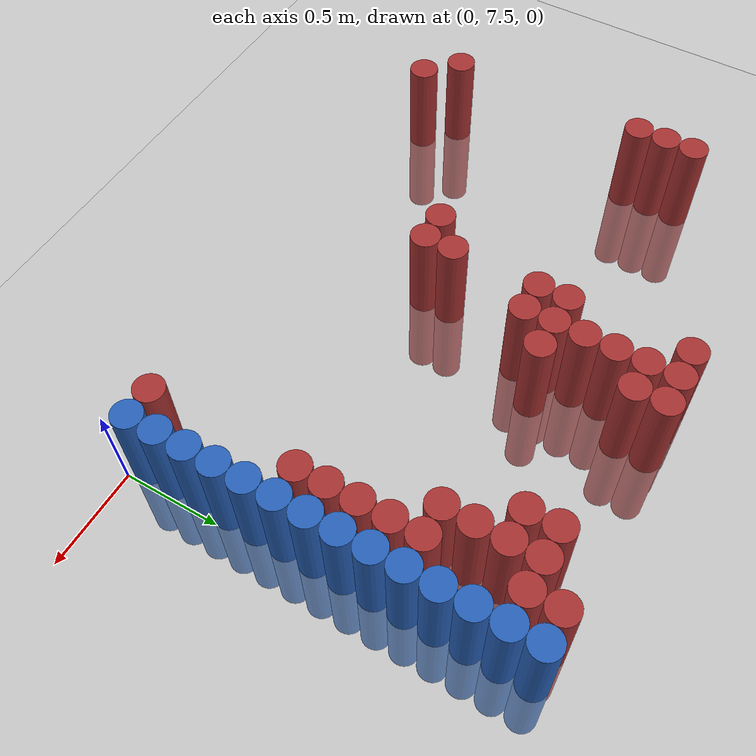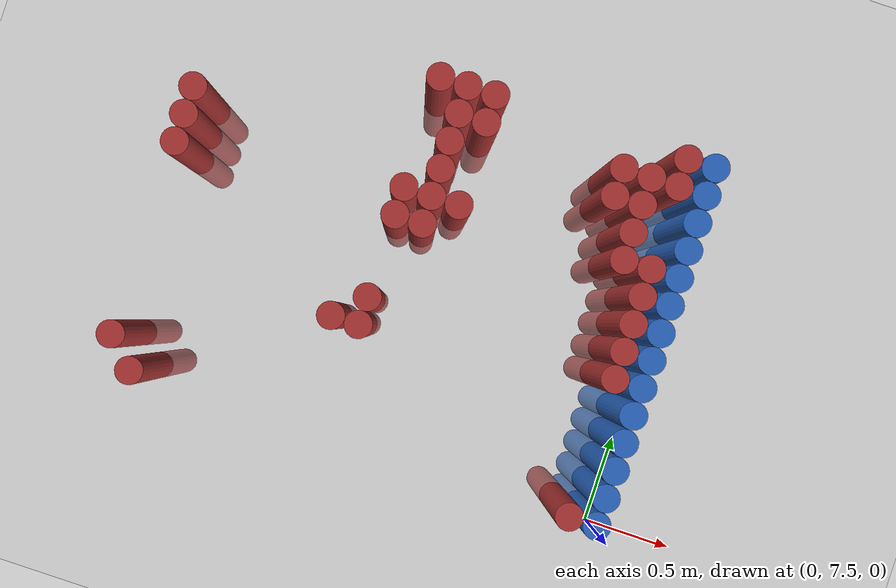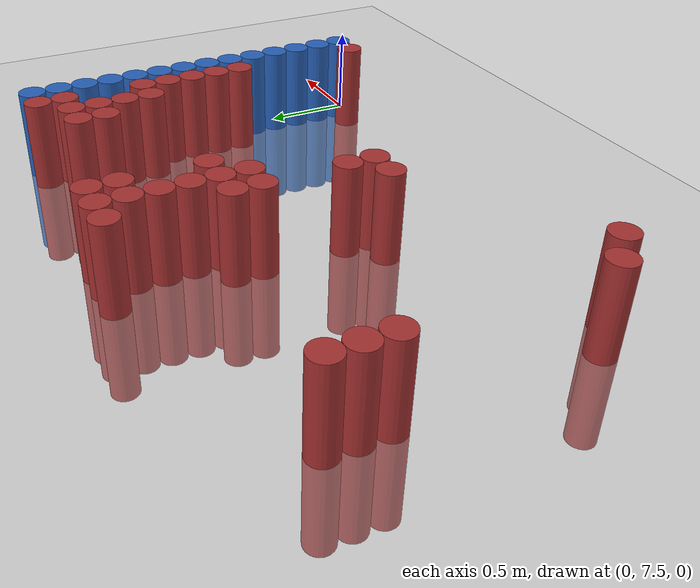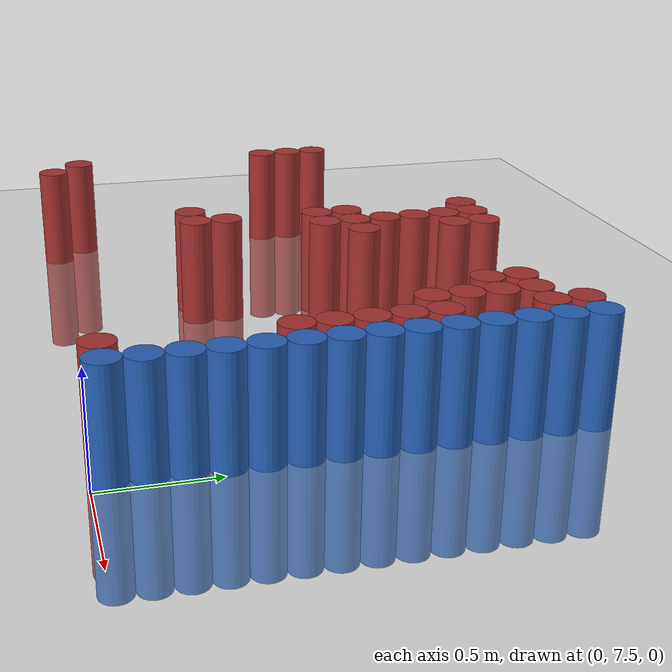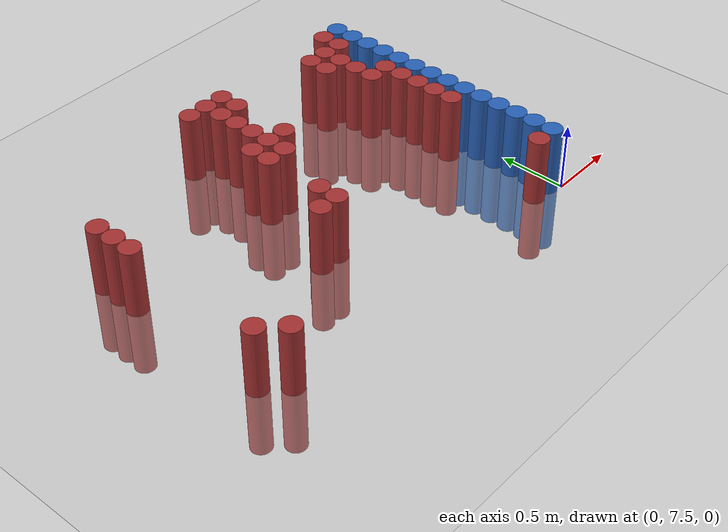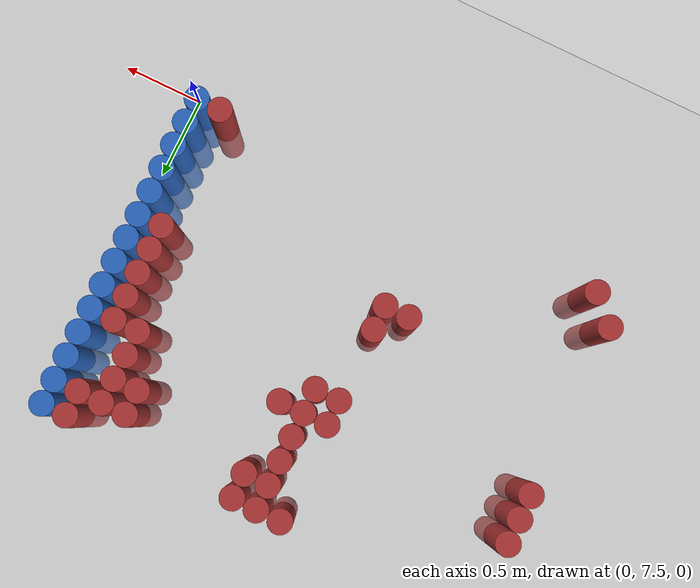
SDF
<sdf version="1.6">
 <world name="default">
  <model name="ground_plane">
   <static>1</static>
   <link name="link">
    <collision name="collision">
     <geometry><plane><normal>0 0 1</normal><size>100 100</size></plane></geometry>
     <surface><friction><ode><mu>100</mu><mu2>50</mu2></ode></friction></surface>
    </collision>
    <visual name="visual">
     <cast_shadows>0</cast_shadows>
     <geometry><plane><normal>0 0 1</normal><size>100 100</size></plane></geometry>
     <material>
      <script><uri>file://media/materials/scripts/gazebo.material</uri><name>Gazebo/Grey</name></script>
     </material>
    </visual>
   </link>
  </model>
  <model name="unit_cylinder_212">
   <static>1</static>
   <pose>-2.775000 7.725000 0.000000 0.000000 0.000000 0.000000</pose>
   <link name="link">
    <inertial>
     <mass>1</mass>
     <inertia><ixx>0.145833</ixx><ixy>0</ixy><ixz>0</ixz><iyy>0.145833</iyy><iyz>0</iyz><izz>0.125</izz></inertia>
    </inertial>
    <collision name="collision">
     <geometry><cylinder><radius>0.075000</radius><length>1</length></cylinder></geometry>
    </collision>
    <visual name="visual">
     <geometry><cylinder><radius>0.075000</radius><length>1</length></cylinder></geometry>
     <material>
      <ambient>0.648000 0.192000 0.192000 1</ambient>
      <diffuse>0.648000 0.192000 0.192000 1</diffuse>
     </material>
     <material>
      <script><name>Gazebo/Grey</name><uri>file://media/materials/scripts/gazebo.material</uri></script>
     </material>
    </visual>
   </link>
  </model>
  <model name="unit_cylinder_213">
   <static>1</static>
   <pose>-2.775000 8.775000 0.000000 0.000000 0.000000 0.000000</pose>
   <link name="link">
    <inertial>
     <mass>1</mass>
     <inertia><ixx>0.145833</ixx><ixy>0</ixy><ixz>0</ixz><iyy>0.145833</iyy><iyz>0</iyz><izz>0.125</izz></inertia>
    </inertial>
    <collision name="collision">
     <geometry><cylinder><radius>0.075000</radius><length>1</length></cylinder></geometry>
    </collision>
    <visual name="visual">
     <geometry><cylinder><radius>0.075000</radius><length>1</length></cylinder></geometry>
     <material>
      <ambient>0.648000 0.192000 0.192000 1</ambient>
      <diffuse>0.648000 0.192000 0.192000 1</diffuse>
     </material>
     <material>
      <script><name>Gazebo/Grey</name><uri>file://media/materials/scripts/gazebo.material</uri></script>
     </material>
    </visual>
   </link>
  </model>
  <model name="unit_cylinder_214">
   <static>1</static>
   <pose>-2.775000 8.925000 0.000000 0.000000 0.000000 0.000000</pose>
   <link name="link">
    <inertial>
     <mass>1</mass>
     <inertia><ixx>0.145833</ixx><ixy>0</ixy><ixz>0</ixz><iyy>0.145833</iyy><iyz>0</iyz><izz>0.125</izz></inertia>
    </inertial>
    <collision name="collision">
     <geometry><cylinder><radius>0.075000</radius><length>1</length></cylinder></geometry>
    </collision>
    <visual name="visual">
     <geometry><cylinder><radius>0.075000</radius><length>1</length></cylinder></geometry>
     <material>
      <ambient>0.648000 0.192000 0.192000 1</ambient>
      <diffuse>0.648000 0.192000 0.192000 1</diffuse>
     </material>
     <material>
      <script><name>Gazebo/Grey</name><uri>file://media/materials/scripts/gazebo.material</uri></script>
     </material>
    </visual>
   </link>
  </model>
  <model name="unit_cylinder_215">
   <static>1</static>
   <pose>-2.775000 9.075000 0.000000 0.000000 0.000000 0.000000</pose>
   <link name="link">
    <inertial>
     <mass>1</mass>
     <inertia><ixx>0.145833</ixx><ixy>0</ixy><ixz>0</ixz><iyy>0.145833</iyy><iyz>0</iyz><izz>0.125</izz></inertia>
    </inertial>
    <collision name="collision">
     <geometry><cylinder><radius>0.075000</radius><length>1</length></cylinder></geometry>
    </collision>
    <visual name="visual">
     <geometry><cylinder><radius>0.075000</radius><length>1</length></cylinder></geometry>
     <material>
      <ambient>0.648000 0.192000 0.192000 1</ambient>
      <diffuse>0.648000 0.192000 0.192000 1</diffuse>
     </material>
     <material>
      <script><name>Gazebo/Grey</name><uri>file://media/materials/scripts/gazebo.material</uri></script>
     </material>
    </visual>
   </link>
  </model>
  <model name="unit_cylinder_216">
   <static>1</static>
   <pose>-2.625000 7.575000 0.000000 0.000000 0.000000 0.000000</pose>
   <link name="link">
    <inertial>
     <mass>1</mass>
     <inertia><ixx>0.145833</ixx><ixy>0</ixy><ixz>0</ixz><iyy>0.145833</iyy><iyz>0</iyz><izz>0.125</izz></inertia>
    </inertial>
    <collision name="collision">
     <geometry><cylinder><radius>0.075000</radius><length>1</length></cylinder></geometry>
    </collision>
    <visual name="visual">
     <geometry><cylinder><radius>0.075000</radius><length>1</length></cylinder></geometry>
     <material>
      <ambient>0.648000 0.192000 0.192000 1</ambient>
      <diffuse>0.648000 0.192000 0.192000 1</diffuse>
     </material>
     <material>
      <script><name>Gazebo/Grey</name><uri>file://media/materials/scripts/gazebo.material</uri></script>
     </material>
    </visual>
   </link>
  </model>
  <model name="unit_cylinder_228">
   <static>1</static>
   <pose>-1.725000 8.175000 0.000000 0.000000 0.000000 0.000000</pose>
   <link name="link">
    <inertial>
     <mass>1</mass>
     <inertia><ixx>0.145833</ixx><ixy>0</ixy><ixz>0</ixz><iyy>0.145833</iyy><iyz>0</iyz><izz>0.125</izz></inertia>
    </inertial>
    <collision name="collision">
     <geometry><cylinder><radius>0.075000</radius><length>1</length></cylinder></geometry>
    </collision>
    <visual name="visual">
     <geometry><cylinder><radius>0.075000</radius><length>1</length></cylinder></geometry>
     <material>
      <ambient>0.648000 0.192000 0.192000 1</ambient>
      <diffuse>0.648000 0.192000 0.192000 1</diffuse>
     </material>
     <material>
      <script><name>Gazebo/Grey</name><uri>file://media/materials/scripts/gazebo.material</uri></script>
     </material>
    </visual>
   </link>
  </model>
  <model name="unit_cylinder_236">
   <static>1</static>
   <pose>-1.575000 8.175000 0.000000 0.000000 0.000000 0.000000</pose>
   <link name="link">
    <inertial>
     <mass>1</mass>
     <inertia><ixx>0.145833</ixx><ixy>0</ixy><ixz>0</ixz><iyy>0.145833</iyy><iyz>0</iyz><izz>0.125</izz></inertia>
    </inertial>
    <collision name="collision">
     <geometry><cylinder><radius>0.075000</radius><length>1</length></cylinder></geometry>
    </collision>
    <visual name="visual">
     <geometry><cylinder><radius>0.075000</radius><length>1</length></cylinder></geometry>
     <material>
      <ambient>0.648000 0.192000 0.192000 1</ambient>
      <diffuse>0.648000 0.192000 0.192000 1</diffuse>
     </material>
     <material>
      <script><name>Gazebo/Grey</name><uri>file://media/materials/scripts/gazebo.material</uri></script>
     </material>
    </visual>
   </link>
  </model>
  <model name="unit_cylinder_237">
   <static>1</static>
   <pose>-1.575000 8.325000 0.000000 0.000000 0.000000 0.000000</pose>
   <link name="link">
    <inertial>
     <mass>1</mass>
     <inertia><ixx>0.145833</ixx><ixy>0</ixy><ixz>0</ixz><iyy>0.145833</iyy><iyz>0</iyz><izz>0.125</izz></inertia>
    </inertial>
    <collision name="collision">
     <geometry><cylinder><radius>0.075000</radius><length>1</length></cylinder></geometry>
    </collision>
    <visual name="visual">
     <geometry><cylinder><radius>0.075000</radius><length>1</length></cylinder></geometry>
     <material>
      <ambient>0.648000 0.192000 0.192000 1</ambient>
      <diffuse>0.648000 0.192000 0.192000 1</diffuse>
     </material>
     <material>
      <script><name>Gazebo/Grey</name><uri>file://media/materials/scripts/gazebo.material</uri></script>
     </material>
    </visual>
   </link>
  </model>
  <model name="unit_cylinder_238">
   <static>1</static>
   <pose>-1.575000 8.775000 0.000000 0.000000 0.000000 0.000000</pose>
   <link name="link">
    <inertial>
     <mass>1</mass>
     <inertia><ixx>0.145833</ixx><ixy>0</ixy><ixz>0</ixz><iyy>0.145833</iyy><iyz>0</iyz><izz>0.125</izz></inertia>
    </inertial>
    <collision name="collision">
     <geometry><cylinder><radius>0.075000</radius><length>1</length></cylinder></geometry>
    </collision>
    <visual name="visual">
     <geometry><cylinder><radius>0.075000</radius><length>1</length></cylinder></geometry>
     <material>
      <ambient>0.648000 0.192000 0.192000 1</ambient>
      <diffuse>0.648000 0.192000 0.192000 1</diffuse>
     </material>
     <material>
      <script><name>Gazebo/Grey</name><uri>file://media/materials/scripts/gazebo.material</uri></script>
     </material>
    </visual>
   </link>
  </model>
  <model name="unit_cylinder_239">
   <static>1</static>
   <pose>-1.575000 8.925000 0.000000 0.000000 0.000000 0.000000</pose>
   <link name="link">
    <inertial>
     <mass>1</mass>
     <inertia><ixx>0.145833</ixx><ixy>0</ixy><ixz>0</ixz><iyy>0.145833</iyy><iyz>0</iyz><izz>0.125</izz></inertia>
    </inertial>
    <collision name="collision">
     <geometry><cylinder><radius>0.075000</radius><length>1</length></cylinder></geometry>
    </collision>
    <visual name="visual">
     <geometry><cylinder><radius>0.075000</radius><length>1</length></cylinder></geometry>
     <material>
      <ambient>0.648000 0.192000 0.192000 1</ambient>
      <diffuse>0.648000 0.192000 0.192000 1</diffuse>
     </material>
     <material>
      <script><name>Gazebo/Grey</name><uri>file://media/materials/scripts/gazebo.material</uri></script>
     </material>
    </visual>
   </link>
  </model>
  <model name="unit_cylinder_240">
   <static>1</static>
   <pose>-1.575000 9.525000 0.000000 0.000000 0.000000 0.000000</pose>
   <link name="link">
    <inertial>
     <mass>1</mass>
     <inertia><ixx>0.145833</ixx><ixy>0</ixy><ixz>0</ixz><iyy>0.145833</iyy><iyz>0</iyz><izz>0.125</izz></inertia>
    </inertial>
    <collision name="collision">
     <geometry><cylinder><radius>0.075000</radius><length>1</length></cylinder></geometry>
    </collision>
    <visual name="visual">
     <geometry><cylinder><radius>0.075000</radius><length>1</length></cylinder></geometry>
     <material>
      <ambient>0.648000 0.192000 0.192000 1</ambient>
      <diffuse>0.648000 0.192000 0.192000 1</diffuse>
     </material>
     <material>
      <script><name>Gazebo/Grey</name><uri>file://media/materials/scripts/gazebo.material</uri></script>
     </material>
    </visual>
   </link>
  </model>
  <model name="unit_cylinder_246">
   <static>1</static>
   <pose>-1.425000 8.775000 0.000000 0.000000 0.000000 0.000000</pose>
   <link name="link">
    <inertial>
     <mass>1</mass>
     <inertia><ixx>0.145833</ixx><ixy>0</ixy><ixz>0</ixz><iyy>0.145833</iyy><iyz>0</iyz><izz>0.125</izz></inertia>
    </inertial>
    <collision name="collision">
     <geometry><cylinder><radius>0.075000</radius><length>1</length></cylinder></geometry>
    </collision>
    <visual name="visual">
     <geometry><cylinder><radius>0.075000</radius><length>1</length></cylinder></geometry>
     <material>
      <ambient>0.648000 0.192000 0.192000 1</ambient>
      <diffuse>0.648000 0.192000 0.192000 1</diffuse>
     </material>
     <material>
      <script><name>Gazebo/Grey</name><uri>file://media/materials/scripts/gazebo.material</uri></script>
     </material>
    </visual>
   </link>
  </model>
  <model name="unit_cylinder_247">
   <static>1</static>
   <pose>-1.425000 8.925000 0.000000 0.000000 0.000000 0.000000</pose>
   <link name="link">
    <inertial>
     <mass>1</mass>
     <inertia><ixx>0.145833</ixx><ixy>0</ixy><ixz>0</ixz><iyy>0.145833</iyy><iyz>0</iyz><izz>0.125</izz></inertia>
    </inertial>
    <collision name="collision">
     <geometry><cylinder><radius>0.075000</radius><length>1</length></cylinder></geometry>
    </collision>
    <visual name="visual">
     <geometry><cylinder><radius>0.075000</radius><length>1</length></cylinder></geometry>
     <material>
      <ambient>0.648000 0.192000 0.192000 1</ambient>
      <diffuse>0.648000 0.192000 0.192000 1</diffuse>
     </material>
     <material>
      <script><name>Gazebo/Grey</name><uri>file://media/materials/scripts/gazebo.material</uri></script>
     </material>
    </visual>
   </link>
  </model>
  <model name="unit_cylinder_248">
   <static>1</static>
   <pose>-1.425000 9.075000 0.000000 0.000000 0.000000 0.000000</pose>
   <link name="link">
    <inertial>
     <mass>1</mass>
     <inertia><ixx>0.145833</ixx><ixy>0</ixy><ixz>0</ixz><iyy>0.145833</iyy><iyz>0</iyz><izz>0.125</izz></inertia>
    </inertial>
    <collision name="collision">
     <geometry><cylinder><radius>0.075000</radius><length>1</length></cylinder></geometry>
    </collision>
    <visual name="visual">
     <geometry><cylinder><radius>0.075000</radius><length>1</length></cylinder></geometry>
     <material>
      <ambient>0.648000 0.192000 0.192000 1</ambient>
      <diffuse>0.648000 0.192000 0.192000 1</diffuse>
     </material>
     <material>
      <script><name>Gazebo/Grey</name><uri>file://media/materials/scripts/gazebo.material</uri></script>
     </material>
    </visual>
   </link>
  </model>
  <model name="unit_cylinder_249">
   <static>1</static>
   <pose>-1.425000 9.225000 0.000000 0.000000 0.000000 0.000000</pose>
   <link name="link">
    <inertial>
     <mass>1</mass>
     <inertia><ixx>0.145833</ixx><ixy>0</ixy><ixz>0</ixz><iyy>0.145833</iyy><iyz>0</iyz><izz>0.125</izz></inertia>
    </inertial>
    <collision name="collision">
     <geometry><cylinder><radius>0.075000</radius><length>1</length></cylinder></geometry>
    </collision>
    <visual name="visual">
     <geometry><cylinder><radius>0.075000</radius><length>1</length></cylinder></geometry>
     <material>
      <ambient>0.648000 0.192000 0.192000 1</ambient>
      <diffuse>0.648000 0.192000 0.192000 1</diffuse>
     </material>
     <material>
      <script><name>Gazebo/Grey</name><uri>file://media/materials/scripts/gazebo.material</uri></script>
     </material>
    </visual>
   </link>
  </model>
  <model name="unit_cylinder_250">
   <static>1</static>
   <pose>-1.425000 9.375000 0.000000 0.000000 0.000000 0.000000</pose>
   <link name="link">
    <inertial>
     <mass>1</mass>
     <inertia><ixx>0.145833</ixx><ixy>0</ixy><ixz>0</ixz><iyy>0.145833</iyy><iyz>0</iyz><izz>0.125</izz></inertia>
    </inertial>
    <collision name="collision">
     <geometry><cylinder><radius>0.075000</radius><length>1</length></cylinder></geometry>
    </collision>
    <visual name="visual">
     <geometry><cylinder><radius>0.075000</radius><length>1</length></cylinder></geometry>
     <material>
      <ambient>0.648000 0.192000 0.192000 1</ambient>
      <diffuse>0.648000 0.192000 0.192000 1</diffuse>
     </material>
     <material>
      <script><name>Gazebo/Grey</name><uri>file://media/materials/scripts/gazebo.material</uri></script>
     </material>
    </visual>
   </link>
  </model>
  <model name="unit_cylinder_251">
   <static>1</static>
   <pose>-1.425000 9.525000 0.000000 0.000000 0.000000 0.000000</pose>
   <link name="link">
    <inertial>
     <mass>1</mass>
     <inertia><ixx>0.145833</ixx><ixy>0</ixy><ixz>0</ixz><iyy>0.145833</iyy><iyz>0</iyz><izz>0.125</izz></inertia>
    </inertial>
    <collision name="collision">
     <geometry><cylinder><radius>0.075000</radius><length>1</length></cylinder></geometry>
    </collision>
    <visual name="visual">
     <geometry><cylinder><radius>0.075000</radius><length>1</length></cylinder></geometry>
     <material>
      <ambient>0.648000 0.192000 0.192000 1</ambient>
      <diffuse>0.648000 0.192000 0.192000 1</diffuse>
     </material>
     <material>
      <script><name>Gazebo/Grey</name><uri>file://media/materials/scripts/gazebo.material</uri></script>
     </material>
    </visual>
   </link>
  </model>
  <model name="unit_cylinder_255">
   <static>1</static>
   <pose>-1.275000 8.925000 0.000000 0.000000 0.000000 0.000000</pose>
   <link name="link">
    <inertial>
     <mass>1</mass>
     <inertia><ixx>0.145833</ixx><ixy>0</ixy><ixz>0</ixz><iyy>0.145833</iyy><iyz>0</iyz><izz>0.125</izz></inertia>
    </inertial>
    <collision name="collision">
     <geometry><cylinder><radius>0.075000</radius><length>1</length></cylinder></geometry>
    </collision>
    <visual name="visual">
     <geometry><cylinder><radius>0.075000</radius><length>1</length></cylinder></geometry>
     <material>
      <ambient>0.648000 0.192000 0.192000 1</ambient>
      <diffuse>0.648000 0.192000 0.192000 1</diffuse>
     </material>
     <material>
      <script><name>Gazebo/Grey</name><uri>file://media/materials/scripts/gazebo.material</uri></script>
     </material>
    </visual>
   </link>
  </model>
  <model name="unit_cylinder_256">
   <static>1</static>
   <pose>-1.275000 9.375000 0.000000 0.000000 0.000000 0.000000</pose>
   <link name="link">
    <inertial>
     <mass>1</mass>
     <inertia><ixx>0.145833</ixx><ixy>0</ixy><ixz>0</ixz><iyy>0.145833</iyy><iyz>0</iyz><izz>0.125</izz></inertia>
    </inertial>
    <collision name="collision">
     <geometry><cylinder><radius>0.075000</radius><length>1</length></cylinder></geometry>
    </collision>
    <visual name="visual">
     <geometry><cylinder><radius>0.075000</radius><length>1</length></cylinder></geometry>
     <material>
      <ambient>0.648000 0.192000 0.192000 1</ambient>
      <diffuse>0.648000 0.192000 0.192000 1</diffuse>
     </material>
     <material>
      <script><name>Gazebo/Grey</name><uri>file://media/materials/scripts/gazebo.material</uri></script>
     </material>
    </visual>
   </link>
  </model>
  <model name="unit_cylinder_257">
   <static>1</static>
   <pose>-1.275000 9.525000 0.000000 0.000000 0.000000 0.000000</pose>
   <link name="link">
    <inertial>
     <mass>1</mass>
     <inertia><ixx>0.145833</ixx><ixy>0</ixy><ixz>0</ixz><iyy>0.145833</iyy><iyz>0</iyz><izz>0.125</izz></inertia>
    </inertial>
    <collision name="collision">
     <geometry><cylinder><radius>0.075000</radius><length>1</length></cylinder></geometry>
    </collision>
    <visual name="visual">
     <geometry><cylinder><radius>0.075000</radius><length>1</length></cylinder></geometry>
     <material>
      <ambient>0.648000 0.192000 0.192000 1</ambient>
      <diffuse>0.648000 0.192000 0.192000 1</diffuse>
     </material>
     <material>
      <script><name>Gazebo/Grey</name><uri>file://media/materials/scripts/gazebo.material</uri></script>
     </material>
    </visual>
   </link>
  </model>
  <model name="unit_cylinder_274">
   <static>1</static>
   <pose>-0.525000 9.225000 0.000000 0.000000 0.000000 0.000000</pose>
   <link name="link">
    <inertial>
     <mass>1</mass>
     <inertia><ixx>0.145833</ixx><ixy>0</ixy><ixz>0</ixz><iyy>0.145833</iyy><iyz>0</iyz><izz>0.125</izz></inertia>
    </inertial>
    <collision name="collision">
     <geometry><cylinder><radius>0.075000</radius><length>1</length></cylinder></geometry>
    </collision>
    <visual name="visual">
     <geometry><cylinder><radius>0.075000</radius><length>1</length></cylinder></geometry>
     <material>
      <ambient>0.648000 0.192000 0.192000 1</ambient>
      <diffuse>0.648000 0.192000 0.192000 1</diffuse>
     </material>
     <material>
      <script><name>Gazebo/Grey</name><uri>file://media/materials/scripts/gazebo.material</uri></script>
     </material>
    </visual>
   </link>
  </model>
  <model name="unit_cylinder_275">
   <static>1</static>
   <pose>-0.525000 9.375000 0.000000 0.000000 0.000000 0.000000</pose>
   <link name="link">
    <inertial>
     <mass>1</mass>
     <inertia><ixx>0.145833</ixx><ixy>0</ixy><ixz>0</ixz><iyy>0.145833</iyy><iyz>0</iyz><izz>0.125</izz></inertia>
    </inertial>
    <collision name="collision">
     <geometry><cylinder><radius>0.075000</radius><length>1</length></cylinder></geometry>
    </collision>
    <visual name="visual">
     <geometry><cylinder><radius>0.075000</radius><length>1</length></cylinder></geometry>
     <material>
      <ambient>0.648000 0.192000 0.192000 1</ambient>
      <diffuse>0.648000 0.192000 0.192000 1</diffuse>
     </material>
     <material>
      <script><name>Gazebo/Grey</name><uri>file://media/materials/scripts/gazebo.material</uri></script>
     </material>
    </visual>
   </link>
  </model>
  <model name="unit_cylinder_288">
   <static>1</static>
   <pose>-0.375000 8.925000 0.000000 0.000000 0.000000 0.000000</pose>
   <link name="link">
    <inertial>
     <mass>1</mass>
     <inertia><ixx>0.145833</ixx><ixy>0</ixy><ixz>0</ixz><iyy>0.145833</iyy><iyz>0</iyz><izz>0.125</izz></inertia>
    </inertial>
    <collision name="collision">
     <geometry><cylinder><radius>0.075000</radius><length>1</length></cylinder></geometry>
    </collision>
    <visual name="visual">
     <geometry><cylinder><radius>0.075000</radius><length>1</length></cylinder></geometry>
     <material>
      <ambient>0.648000 0.192000 0.192000 1</ambient>
      <diffuse>0.648000 0.192000 0.192000 1</diffuse>
     </material>
     <material>
      <script><name>Gazebo/Grey</name><uri>file://media/materials/scripts/gazebo.material</uri></script>
     </material>
    </visual>
   </link>
  </model>
  <model name="unit_cylinder_289">
   <static>1</static>
   <pose>-0.375000 9.075000 0.000000 0.000000 0.000000 0.000000</pose>
   <link name="link">
    <inertial>
     <mass>1</mass>
     <inertia><ixx>0.145833</ixx><ixy>0</ixy><ixz>0</ixz><iyy>0.145833</iyy><iyz>0</iyz><izz>0.125</izz></inertia>
    </inertial>
    <collision name="collision">
     <geometry><cylinder><radius>0.075000</radius><length>1</length></cylinder></geometry>
    </collision>
    <visual name="visual">
     <geometry><cylinder><radius>0.075000</radius><length>1</length></cylinder></geometry>
     <material>
      <ambient>0.648000 0.192000 0.192000 1</ambient>
      <diffuse>0.648000 0.192000 0.192000 1</diffuse>
     </material>
     <material>
      <script><name>Gazebo/Grey</name><uri>file://media/materials/scripts/gazebo.material</uri></script>
     </material>
    </visual>
   </link>
  </model>
  <model name="unit_cylinder_290">
   <static>1</static>
   <pose>-0.375000 9.225000 0.000000 0.000000 0.000000 0.000000</pose>
   <link name="link">
    <inertial>
     <mass>1</mass>
     <inertia><ixx>0.145833</ixx><ixy>0</ixy><ixz>0</ixz><iyy>0.145833</iyy><iyz>0</iyz><izz>0.125</izz></inertia>
    </inertial>
    <collision name="collision">
     <geometry><cylinder><radius>0.075000</radius><length>1</length></cylinder></geometry>
    </collision>
    <visual name="visual">
     <geometry><cylinder><radius>0.075000</radius><length>1</length></cylinder></geometry>
     <material>
      <ambient>0.648000 0.192000 0.192000 1</ambient>
      <diffuse>0.648000 0.192000 0.192000 1</diffuse>
     </material>
     <material>
      <script><name>Gazebo/Grey</name><uri>file://media/materials/scripts/gazebo.material</uri></script>
     </material>
    </visual>
   </link>
  </model>
  <model name="unit_cylinder_291">
   <static>1</static>
   <pose>-0.375000 9.375000 0.000000 0.000000 0.000000 0.000000</pose>
   <link name="link">
    <inertial>
     <mass>1</mass>
     <inertia><ixx>0.145833</ixx><ixy>0</ixy><ixz>0</ixz><iyy>0.145833</iyy><iyz>0</iyz><izz>0.125</izz></inertia>
    </inertial>
    <collision name="collision">
     <geometry><cylinder><radius>0.075000</radius><length>1</length></cylinder></geometry>
    </collision>
    <visual name="visual">
     <geometry><cylinder><radius>0.075000</radius><length>1</length></cylinder></geometry>
     <material>
      <ambient>0.648000 0.192000 0.192000 1</ambient>
      <diffuse>0.648000 0.192000 0.192000 1</diffuse>
     </material>
     <material>
      <script><name>Gazebo/Grey</name><uri>file://media/materials/scripts/gazebo.material</uri></script>
     </material>
    </visual>
   </link>
  </model>
  <model name="unit_cylinder_298">
   <static>1</static>
   <pose>-0.225000 7.575000 0.000000 0.000000 0.000000 0.000000</pose>
   <link name="link">
    <inertial>
     <mass>1</mass>
     <inertia><ixx>0.145833</ixx><ixy>0</ixy><ixz>0</ixz><iyy>0.145833</iyy><iyz>0</iyz><izz>0.125</izz></inertia>
    </inertial>
    <collision name="collision">
     <geometry><cylinder><radius>0.075000</radius><length>1</length></cylinder></geometry>
    </collision>
    <visual name="visual">
     <geometry><cylinder><radius>0.075000</radius><length>1</length></cylinder></geometry>
     <material>
      <ambient>0.648000 0.192000 0.192000 1</ambient>
      <diffuse>0.648000 0.192000 0.192000 1</diffuse>
     </material>
     <material>
      <script><name>Gazebo/Grey</name><uri>file://media/materials/scripts/gazebo.material</uri></script>
     </material>
    </visual>
   </link>
  </model>
  <model name="unit_cylinder_299">
   <static>1</static>
   <pose>-0.225000 8.325000 0.000000 0.000000 0.000000 0.000000</pose>
   <link name="link">
    <inertial>
     <mass>1</mass>
     <inertia><ixx>0.145833</ixx><ixy>0</ixy><ixz>0</ixz><iyy>0.145833</iyy><iyz>0</iyz><izz>0.125</izz></inertia>
    </inertial>
    <collision name="collision">
     <geometry><cylinder><radius>0.075000</radius><length>1</length></cylinder></geometry>
    </collision>
    <visual name="visual">
     <geometry><cylinder><radius>0.075000</radius><length>1</length></cylinder></geometry>
     <material>
      <ambient>0.648000 0.192000 0.192000 1</ambient>
      <diffuse>0.648000 0.192000 0.192000 1</diffuse>
     </material>
     <material>
      <script><name>Gazebo/Grey</name><uri>file://media/materials/scripts/gazebo.material</uri></script>
     </material>
    </visual>
   </link>
  </model>
  <model name="unit_cylinder_300">
   <static>1</static>
   <pose>-0.225000 8.475000 0.000000 0.000000 0.000000 0.000000</pose>
   <link name="link">
    <inertial>
     <mass>1</mass>
     <inertia><ixx>0.145833</ixx><ixy>0</ixy><ixz>0</ixz><iyy>0.145833</iyy><iyz>0</iyz><izz>0.125</izz></inertia>
    </inertial>
    <collision name="collision">
     <geometry><cylinder><radius>0.075000</radius><length>1</length></cylinder></geometry>
    </collision>
    <visual name="visual">
     <geometry><cylinder><radius>0.075000</radius><length>1</length></cylinder></geometry>
     <material>
      <ambient>0.648000 0.192000 0.192000 1</ambient>
      <diffuse>0.648000 0.192000 0.192000 1</diffuse>
     </material>
     <material>
      <script><name>Gazebo/Grey</name><uri>file://media/materials/scripts/gazebo.material</uri></script>
     </material>
    </visual>
   </link>
  </model>
  <model name="unit_cylinder_301">
   <static>1</static>
   <pose>-0.225000 8.625000 0.000000 0.000000 0.000000 0.000000</pose>
   <link name="link">
    <inertial>
     <mass>1</mass>
     <inertia><ixx>0.145833</ixx><ixy>0</ixy><ixz>0</ixz><iyy>0.145833</iyy><iyz>0</iyz><izz>0.125</izz></inertia>
    </inertial>
    <collision name="collision">
     <geometry><cylinder><radius>0.075000</radius><length>1</length></cylinder></geometry>
    </collision>
    <visual name="visual">
     <geometry><cylinder><radius>0.075000</radius><length>1</length></cylinder></geometry>
     <material>
      <ambient>0.648000 0.192000 0.192000 1</ambient>
      <diffuse>0.648000 0.192000 0.192000 1</diffuse>
     </material>
     <material>
      <script><name>Gazebo/Grey</name><uri>file://media/materials/scripts/gazebo.material</uri></script>
     </material>
    </visual>
   </link>
  </model>
  <model name="unit_cylinder_302">
   <static>1</static>
   <pose>-0.225000 8.775000 0.000000 0.000000 0.000000 0.000000</pose>
   <link name="link">
    <inertial>
     <mass>1</mass>
     <inertia><ixx>0.145833</ixx><ixy>0</ixy><ixz>0</ixz><iyy>0.145833</iyy><iyz>0</iyz><izz>0.125</izz></inertia>
    </inertial>
    <collision name="collision">
     <geometry><cylinder><radius>0.075000</radius><length>1</length></cylinder></geometry>
    </collision>
    <visual name="visual">
     <geometry><cylinder><radius>0.075000</radius><length>1</length></cylinder></geometry>
     <material>
      <ambient>0.648000 0.192000 0.192000 1</ambient>
      <diffuse>0.648000 0.192000 0.192000 1</diffuse>
     </material>
     <material>
      <script><name>Gazebo/Grey</name><uri>file://media/materials/scripts/gazebo.material</uri></script>
     </material>
    </visual>
   </link>
  </model>
  <model name="unit_cylinder_303">
   <static>1</static>
   <pose>-0.225000 8.925000 0.000000 0.000000 0.000000 0.000000</pose>
   <link name="link">
    <inertial>
     <mass>1</mass>
     <inertia><ixx>0.145833</ixx><ixy>0</ixy><ixz>0</ixz><iyy>0.145833</iyy><iyz>0</iyz><izz>0.125</izz></inertia>
    </inertial>
    <collision name="collision">
     <geometry><cylinder><radius>0.075000</radius><length>1</length></cylinder></geometry>
    </collision>
    <visual name="visual">
     <geometry><cylinder><radius>0.075000</radius><length>1</length></cylinder></geometry>
     <material>
      <ambient>0.648000 0.192000 0.192000 1</ambient>
      <diffuse>0.648000 0.192000 0.192000 1</diffuse>
     </material>
     <material>
      <script><name>Gazebo/Grey</name><uri>file://media/materials/scripts/gazebo.material</uri></script>
     </material>
    </visual>
   </link>
  </model>
  <model name="unit_cylinder_304">
   <static>1</static>
   <pose>-0.225000 9.375000 0.000000 0.000000 0.000000 0.000000</pose>
   <link name="link">
    <inertial>
     <mass>1</mass>
     <inertia><ixx>0.145833</ixx><ixy>0</ixy><ixz>0</ixz><iyy>0.145833</iyy><iyz>0</iyz><izz>0.125</izz></inertia>
    </inertial>
    <collision name="collision">
     <geometry><cylinder><radius>0.075000</radius><length>1</length></cylinder></geometry>
    </collision>
    <visual name="visual">
     <geometry><cylinder><radius>0.075000</radius><length>1</length></cylinder></geometry>
     <material>
      <ambient>0.648000 0.192000 0.192000 1</ambient>
      <diffuse>0.648000 0.192000 0.192000 1</diffuse>
     </material>
     <material>
      <script><name>Gazebo/Grey</name><uri>file://media/materials/scripts/gazebo.material</uri></script>
     </material>
    </visual>
   </link>
  </model>
  <model name="unit_cylinder_305">
   <static>1</static>
   <pose>-0.225000 9.525000 0.000000 0.000000 0.000000 0.000000</pose>
   <link name="link">
    <inertial>
     <mass>1</mass>
     <inertia><ixx>0.145833</ixx><ixy>0</ixy><ixz>0</ixz><iyy>0.145833</iyy><iyz>0</iyz><izz>0.125</izz></inertia>
    </inertial>
    <collision name="collision">
     <geometry><cylinder><radius>0.075000</radius><length>1</length></cylinder></geometry>
    </collision>
    <visual name="visual">
     <geometry><cylinder><radius>0.075000</radius><length>1</length></cylinder></geometry>
     <material>
      <ambient>0.648000 0.192000 0.192000 1</ambient>
      <diffuse>0.648000 0.192000 0.192000 1</diffuse>
     </material>
     <material>
      <script><name>Gazebo/Grey</name><uri>file://media/materials/scripts/gazebo.material</uri></script>
     </material>
    </visual>
   </link>
  </model>
  <model name="unit_cylinder_322">
   <static>1</static>
   <pose>-0.075000 7.575000 0.000000 0.000000 0.000000 0.000000</pose>
   <link name="link">
    <inertial>
     <mass>1</mass>
     <inertia><ixx>0.145833</ixx><ixy>0</ixy><ixz>0</ixz><iyy>0.145833</iyy><iyz>0</iyz><izz>0.125</izz></inertia>
    </inertial>
    <collision name="collision">
     <geometry><cylinder><radius>0.075000</radius><length>1</length></cylinder></geometry>
    </collision>
    <visual name="visual">
     <geometry><cylinder><radius>0.075000</radius><length>1</length></cylinder></geometry>
     <material>
      <ambient>0.152000 0.379000 0.720000 1</ambient>
      <diffuse>0.152000 0.379000 0.720000 1</diffuse>
     </material>
     <material>
      <script><name>Gazebo/Grey</name><uri>file://media/materials/scripts/gazebo.material</uri></script>
     </material>
    </visual>
   </link>
  </model>
  <model name="unit_cylinder_323">
   <static>1</static>
   <pose>-0.075000 7.725000 0.000000 0.000000 0.000000 0.000000</pose>
   <link name="link">
    <inertial>
     <mass>1</mass>
     <inertia><ixx>0.145833</ixx><ixy>0</ixy><ixz>0</ixz><iyy>0.145833</iyy><iyz>0</iyz><izz>0.125</izz></inertia>
    </inertial>
    <collision name="collision">
     <geometry><cylinder><radius>0.075000</radius><length>1</length></cylinder></geometry>
    </collision>
    <visual name="visual">
     <geometry><cylinder><radius>0.075000</radius><length>1</length></cylinder></geometry>
     <material>
      <ambient>0.152000 0.379000 0.720000 1</ambient>
      <diffuse>0.152000 0.379000 0.720000 1</diffuse>
     </material>
     <material>
      <script><name>Gazebo/Grey</name><uri>file://media/materials/scripts/gazebo.material</uri></script>
     </material>
    </visual>
   </link>
  </model>
  <model name="unit_cylinder_324">
   <static>1</static>
   <pose>-0.075000 7.875000 0.000000 0.000000 0.000000 0.000000</pose>
   <link name="link">
    <inertial>
     <mass>1</mass>
     <inertia><ixx>0.145833</ixx><ixy>0</ixy><ixz>0</ixz><iyy>0.145833</iyy><iyz>0</iyz><izz>0.125</izz></inertia>
    </inertial>
    <collision name="collision">
     <geometry><cylinder><radius>0.075000</radius><length>1</length></cylinder></geometry>
    </collision>
    <visual name="visual">
     <geometry><cylinder><radius>0.075000</radius><length>1</length></cylinder></geometry>
     <material>
      <ambient>0.152000 0.379000 0.720000 1</ambient>
      <diffuse>0.152000 0.379000 0.720000 1</diffuse>
     </material>
     <material>
      <script><name>Gazebo/Grey</name><uri>file://media/materials/scripts/gazebo.material</uri></script>
     </material>
    </visual>
   </link>
  </model>
  <model name="unit_cylinder_325">
   <static>1</static>
   <pose>-0.075000 8.025000 0.000000 0.000000 0.000000 0.000000</pose>
   <link name="link">
    <inertial>
     <mass>1</mass>
     <inertia><ixx>0.145833</ixx><ixy>0</ixy><ixz>0</ixz><iyy>0.145833</iyy><iyz>0</iyz><izz>0.125</izz></inertia>
    </inertial>
    <collision name="collision">
     <geometry><cylinder><radius>0.075000</radius><length>1</length></cylinder></geometry>
    </collision>
    <visual name="visual">
     <geometry><cylinder><radius>0.075000</radius><length>1</length></cylinder></geometry>
     <material>
      <ambient>0.152000 0.379000 0.720000 1</ambient>
      <diffuse>0.152000 0.379000 0.720000 1</diffuse>
     </material>
     <material>
      <script><name>Gazebo/Grey</name><uri>file://media/materials/scripts/gazebo.material</uri></script>
     </material>
    </visual>
   </link>
  </model>
  <model name="unit_cylinder_326">
   <static>1</static>
   <pose>-0.075000 8.175000 0.000000 0.000000 0.000000 0.000000</pose>
   <link name="link">
    <inertial>
     <mass>1</mass>
     <inertia><ixx>0.145833</ixx><ixy>0</ixy><ixz>0</ixz><iyy>0.145833</iyy><iyz>0</iyz><izz>0.125</izz></inertia>
    </inertial>
    <collision name="collision">
     <geometry><cylinder><radius>0.075000</radius><length>1</length></cylinder></geometry>
    </collision>
    <visual name="visual">
     <geometry><cylinder><radius>0.075000</radius><length>1</length></cylinder></geometry>
     <material>
      <ambient>0.152000 0.379000 0.720000 1</ambient>
      <diffuse>0.152000 0.379000 0.720000 1</diffuse>
     </material>
     <material>
      <script><name>Gazebo/Grey</name><uri>file://media/materials/scripts/gazebo.material</uri></script>
     </material>
    </visual>
   </link>
  </model>
  <model name="unit_cylinder_327">
   <static>1</static>
   <pose>-0.075000 8.325000 0.000000 0.000000 0.000000 0.000000</pose>
   <link name="link">
    <inertial>
     <mass>1</mass>
     <inertia><ixx>0.145833</ixx><ixy>0</ixy><ixz>0</ixz><iyy>0.145833</iyy><iyz>0</iyz><izz>0.125</izz></inertia>
    </inertial>
    <collision name="collision">
     <geometry><cylinder><radius>0.075000</radius><length>1</length></cylinder></geometry>
    </collision>
    <visual name="visual">
     <geometry><cylinder><radius>0.075000</radius><length>1</length></cylinder></geometry>
     <material>
      <ambient>0.152000 0.379000 0.720000 1</ambient>
      <diffuse>0.152000 0.379000 0.720000 1</diffuse>
     </material>
     <material>
      <script><name>Gazebo/Grey</name><uri>file://media/materials/scripts/gazebo.material</uri></script>
     </material>
    </visual>
   </link>
  </model>
  <model name="unit_cylinder_328">
   <static>1</static>
   <pose>-0.075000 8.475000 0.000000 0.000000 0.000000 0.000000</pose>
   <link name="link">
    <inertial>
     <mass>1</mass>
     <inertia><ixx>0.145833</ixx><ixy>0</ixy><ixz>0</ixz><iyy>0.145833</iyy><iyz>0</iyz><izz>0.125</izz></inertia>
    </inertial>
    <collision name="collision">
     <geometry><cylinder><radius>0.075000</radius><length>1</length></cylinder></geometry>
    </collision>
    <visual name="visual">
     <geometry><cylinder><radius>0.075000</radius><length>1</length></cylinder></geometry>
     <material>
      <ambient>0.152000 0.379000 0.720000 1</ambient>
      <diffuse>0.152000 0.379000 0.720000 1</diffuse>
     </material>
     <material>
      <script><name>Gazebo/Grey</name><uri>file://media/materials/scripts/gazebo.material</uri></script>
     </material>
    </visual>
   </link>
  </model>
  <model name="unit_cylinder_329">
   <static>1</static>
   <pose>-0.075000 8.625000 0.000000 0.000000 0.000000 0.000000</pose>
   <link name="link">
    <inertial>
     <mass>1</mass>
     <inertia><ixx>0.145833</ixx><ixy>0</ixy><ixz>0</ixz><iyy>0.145833</iyy><iyz>0</iyz><izz>0.125</izz></inertia>
    </inertial>
    <collision name="collision">
     <geometry><cylinder><radius>0.075000</radius><length>1</length></cylinder></geometry>
    </collision>
    <visual name="visual">
     <geometry><cylinder><radius>0.075000</radius><length>1</length></cylinder></geometry>
     <material>
      <ambient>0.152000 0.379000 0.720000 1</ambient>
      <diffuse>0.152000 0.379000 0.720000 1</diffuse>
     </material>
     <material>
      <script><name>Gazebo/Grey</name><uri>file://media/materials/scripts/gazebo.material</uri></script>
     </material>
    </visual>
   </link>
  </model>
  <model name="unit_cylinder_330">
   <static>1</static>
   <pose>-0.075000 8.775000 0.000000 0.000000 0.000000 0.000000</pose>
   <link name="link">
    <inertial>
     <mass>1</mass>
     <inertia><ixx>0.145833</ixx><ixy>0</ixy><ixz>0</ixz><iyy>0.145833</iyy><iyz>0</iyz><izz>0.125</izz></inertia>
    </inertial>
    <collision name="collision">
     <geometry><cylinder><radius>0.075000</radius><length>1</length></cylinder></geometry>
    </collision>
    <visual name="visual">
     <geometry><cylinder><radius>0.075000</radius><length>1</length></cylinder></geometry>
     <material>
      <ambient>0.152000 0.379000 0.720000 1</ambient>
      <diffuse>0.152000 0.379000 0.720000 1</diffuse>
     </material>
     <material>
      <script><name>Gazebo/Grey</name><uri>file://media/materials/scripts/gazebo.material</uri></script>
     </material>
    </visual>
   </link>
  </model>
  <model name="unit_cylinder_331">
   <static>1</static>
   <pose>-0.075000 8.925000 0.000000 0.000000 0.000000 0.000000</pose>
   <link name="link">
    <inertial>
     <mass>1</mass>
     <inertia><ixx>0.145833</ixx><ixy>0</ixy><ixz>0</ixz><iyy>0.145833</iyy><iyz>0</iyz><izz>0.125</izz></inertia>
    </inertial>
    <collision name="collision">
     <geometry><cylinder><radius>0.075000</radius><length>1</length></cylinder></geometry>
    </collision>
    <visual name="visual">
     <geometry><cylinder><radius>0.075000</radius><length>1</length></cylinder></geometry>
     <material>
      <ambient>0.152000 0.379000 0.720000 1</ambient>
      <diffuse>0.152000 0.379000 0.720000 1</diffuse>
     </material>
     <material>
      <script><name>Gazebo/Grey</name><uri>file://media/materials/scripts/gazebo.material</uri></script>
     </material>
    </visual>
   </link>
  </model>
  <model name="unit_cylinder_332">
   <static>1</static>
   <pose>-0.075000 9.075000 0.000000 0.000000 0.000000 0.000000</pose>
   <link name="link">
    <inertial>
     <mass>1</mass>
     <inertia><ixx>0.145833</ixx><ixy>0</ixy><ixz>0</ixz><iyy>0.145833</iyy><iyz>0</iyz><izz>0.125</izz></inertia>
    </inertial>
    <collision name="collision">
     <geometry><cylinder><radius>0.075000</radius><length>1</length></cylinder></geometry>
    </collision>
    <visual name="visual">
     <geometry><cylinder><radius>0.075000</radius><length>1</length></cylinder></geometry>
     <material>
      <ambient>0.152000 0.379000 0.720000 1</ambient>
      <diffuse>0.152000 0.379000 0.720000 1</diffuse>
     </material>
     <material>
      <script><name>Gazebo/Grey</name><uri>file://media/materials/scripts/gazebo.material</uri></script>
     </material>
    </visual>
   </link>
  </model>
  <model name="unit_cylinder_333">
   <static>1</static>
   <pose>-0.075000 9.225000 0.000000 0.000000 0.000000 0.000000</pose>
   <link name="link">
    <inertial>
     <mass>1</mass>
     <inertia><ixx>0.145833</ixx><ixy>0</ixy><ixz>0</ixz><iyy>0.145833</iyy><iyz>0</iyz><izz>0.125</izz></inertia>
    </inertial>
    <collision name="collision">
     <geometry><cylinder><radius>0.075000</radius><length>1</length></cylinder></geometry>
    </collision>
    <visual name="visual">
     <geometry><cylinder><radius>0.075000</radius><length>1</length></cylinder></geometry>
     <material>
      <ambient>0.152000 0.379000 0.720000 1</ambient>
      <diffuse>0.152000 0.379000 0.720000 1</diffuse>
     </material>
     <material>
      <script><name>Gazebo/Grey</name><uri>file://media/materials/scripts/gazebo.material</uri></script>
     </material>
    </visual>
   </link>
  </model>
  <model name="unit_cylinder_334">
   <static>1</static>
   <pose>-0.075000 9.375000 0.000000 0.000000 0.000000 0.000000</pose>
   <link name="link">
    <inertial>
     <mass>1</mass>
     <inertia><ixx>0.145833</ixx><ixy>0</ixy><ixz>0</ixz><iyy>0.145833</iyy><iyz>0</iyz><izz>0.125</izz></inertia>
    </inertial>
    <collision name="collision">
     <geometry><cylinder><radius>0.075000</radius><length>1</length></cylinder></geometry>
    </collision>
    <visual name="visual">
     <geometry><cylinder><radius>0.075000</radius><length>1</length></cylinder></geometry>
     <material>
      <ambient>0.152000 0.379000 0.720000 1</ambient>
      <diffuse>0.152000 0.379000 0.720000 1</diffuse>
     </material>
     <material>
      <script><name>Gazebo/Grey</name><uri>file://media/materials/scripts/gazebo.material</uri></script>
     </material>
    </visual>
   </link>
  </model>
  <model name="unit_cylinder_335">
   <static>1</static>
   <pose>-0.075000 9.525000 0.000000 0.000000 0.000000 0.000000</pose>
   <link name="link">
    <inertial>
     <mass>1</mass>
     <inertia><ixx>0.145833</ixx><ixy>0</ixy><ixz>0</ixz><iyy>0.145833</iyy><iyz>0</iyz><izz>0.125</izz></inertia>
    </inertial>
    <collision name="collision">
     <geometry><cylinder><radius>0.075000</radius><length>1</length></cylinder></geometry>
    </collision>
    <visual name="visual">
     <geometry><cylinder><radius>0.075000</radius><length>1</length></cylinder></geometry>
     <material>
      <ambient>0.152000 0.379000 0.720000 1</ambient>
      <diffuse>0.152000 0.379000 0.720000 1</diffuse>
     </material>
     <material>
      <script><name>Gazebo/Grey</name><uri>file://media/materials/scripts/gazebo.material</uri></script>
     </material>
    </visual>
   </link>
  </model>
 </world>
</sdf>
